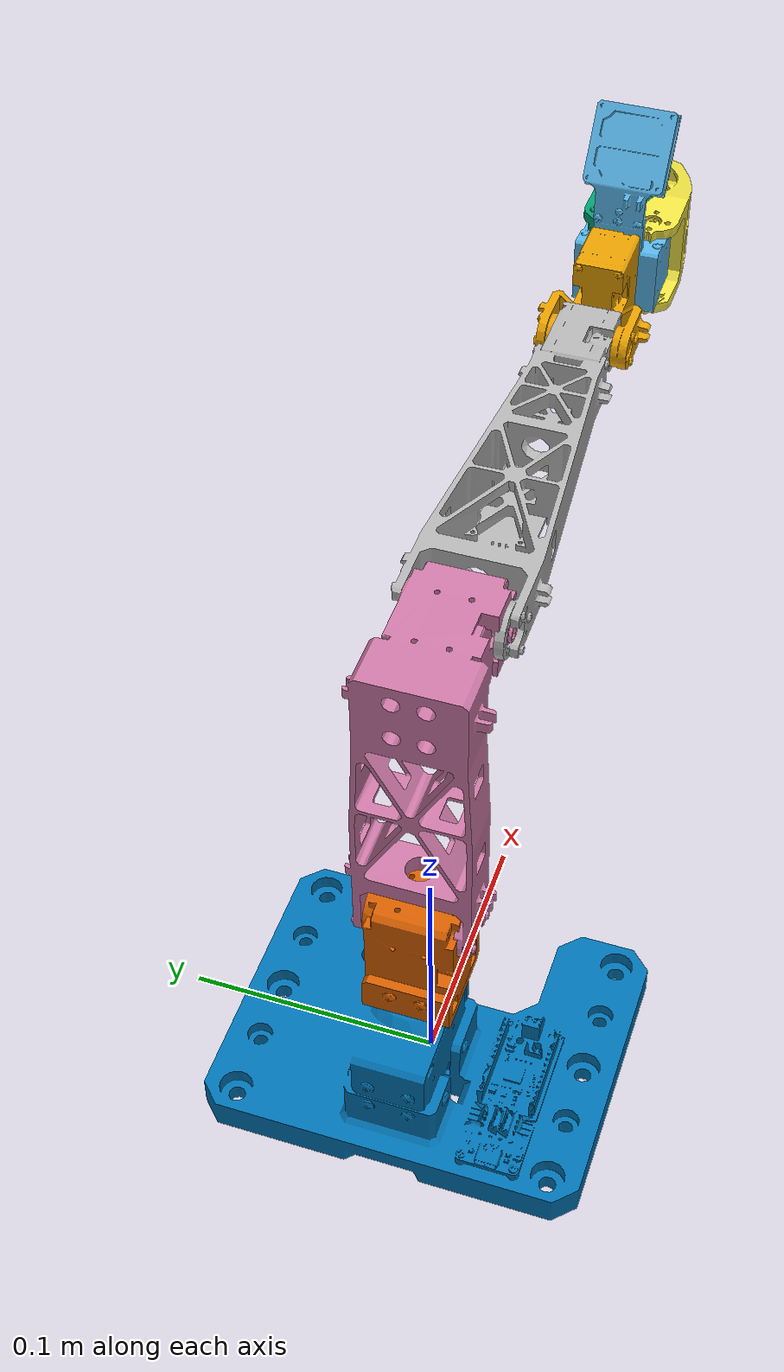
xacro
<?xml version="1.0"?>
<robot name="omx_f" xmlns:xacro="http://www.ros.org/wiki/xacro">
  <xacro:arg name="prefix" default="" />
  <xacro:arg name="use_sim" default="false" />
  <xacro:arg name="use_mock_hardware" default="false" />
  <xacro:arg name="mock_sensor_commands" default="false" />
  <xacro:arg name="config_type" default="omx_f" />
  <xacro:arg name="ros2_control_type" default="omx_f" />
  <xacro:arg name="port_name" default="/dev/ttyACM0" />
  <xacro:arg name="use_custom_hw" default="false" />

  <xacro:include filename="$(find open_manipulator_description)/gazebo/omx_f.gazebo.xacro" />
  <xacro:include filename="$(find open_manipulator_description)/urdf/omx_f/omx_f_arm.urdf.xacro" />
  <xacro:include filename="$(find omx_bringup)/config/omx_f/omx_f_grasp.ros2_control.xacro" />

  <link name="world" />

  <joint name="$(arg prefix)world_fixed" type="fixed">
    <parent link="world" />
    <child link="$(arg prefix)link0" />
    <origin xyz="0.0 0.0 0.0" rpy="0 0 0" />
  </joint>

  <joint name="$(arg prefix)end_effector_joint" type="fixed">
    <parent link="$(arg prefix)link5" />
    <child link="$(arg prefix)end_effector_link" />
    <origin xyz="0.09193 -0.0016 0" rpy="0 0 0" />
  </joint>

  <link name="$(arg prefix)end_effector_link">
    <visual>
      <origin xyz="0 0 0" rpy="0 0 0" />
      <geometry>
        <box size="0.01 0.01 0.01" />
      </geometry>
      <material name="red">
        <color rgba="1.0 0.0 0.0 1" />
      </material>
    </visual>
  </link>

  <!-- Camera frames previously published via static_transform_publisher. -->
  <link name="$(arg prefix)camera_mount" />
  <joint name="$(arg prefix)camera_mount_joint" type="fixed">
    <parent link="$(arg prefix)link5" />
    <child link="$(arg prefix)camera_mount" />
    <origin xyz="0.025 0.0 0.054" rpy="0.0 0.65 0.0" />
  </joint>

  <link name="$(arg prefix)default_cam" />
  <joint name="$(arg prefix)default_cam_joint" type="fixed">
    <parent link="$(arg prefix)camera_mount" />
    <child link="$(arg prefix)default_cam" />
    <origin xyz="0.0312 0.0 0.0" rpy="-1.5708 0.0 -1.5708" />
  </joint>

  <xacro:omx_f prefix="$(arg prefix)" />
  <xacro:omx_f_gazebo prefix="$(arg prefix)" />

  <xacro:omx_f_system
    name="OMXFSystem" prefix="$(arg prefix)" use_sim="$(arg use_sim)"
    use_mock_hardware="$(arg use_mock_hardware)"
    mock_sensor_commands="$(arg mock_sensor_commands)"
    port_name="$(arg port_name)"
    use_custom_hw="$(arg use_custom_hw)" />

  <gazebo>
    <plugin filename="gz_ros2_control-system" name="gz_ros2_control::GazeboSimROS2ControlPlugin">
      <parameters>$(find open_manipulator_bringup)/config/$(arg config_type)/hardware_controller_manager.yaml</parameters>
    </plugin>
  </gazebo>
</robot>

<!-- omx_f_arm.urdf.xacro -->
<robot xmlns:xacro="http://www.ros.org/wiki/xacro">
   <xacro:macro name="omx_f" params="prefix">
   <xacro:property name="meshes_file_direction" value="package://open_manipulator_description/meshes/omx_f" />
      <link name="${prefix}link0" >
         <visual name="${prefix}link0_visual">
            <origin xyz="0 0 0" rpy="0 0 0" />
            <geometry><mesh filename="${meshes_file_direction}/visual/dae/link0.dae" /></geometry>
         </visual>
         <collision name="${prefix}link0_collision">
            <origin xyz="0 0 0" rpy="0 0 0" />
            <geometry>
               <mesh filename="${meshes_file_direction}/follower_01_base.stl" scale="0.001 0.001 0.001" />
            </geometry>
            <material name="grey">
               <color rgba="0.2 0.2 0.2 1" />
            </material>
         </collision>
         <inertial>
            <origin xyz="-1.441250800e-02 -3.149887900e-03 1.927659900e-02" />
            <mass value="2.238905100e-01" />
            <inertia ixx="3.568046100e-04" ixy="-3.297178900e-06" ixz="1.907676700e-05"
            iyy="2.194193200e-04" iyz="1.407164200e-06"
            izz="4.557589900e-04" />
         </inertial>
      </link>
      <joint name="${prefix}joint1" type="revolute">
         <parent link="${prefix}link0" />
         <child link="${prefix}link1" />
         <origin xyz="-0.01125 0 0.034" rpy="0 0 0" />
         <axis xyz="0 0 1" />
         <limit velocity="4.8" effort="1000" lower="${-pi*2.0}" upper="${pi*2.0}" />
         <dynamics damping="0.05" />
      </joint>
      <link name="${prefix}link1" >
         <visual name="${prefix}link1_visual">
            <origin xyz="0 0 0" rpy="0 0 0" />
            <geometry><mesh filename="${meshes_file_direction}/visual/dae/link1.dae" /></geometry>
         </visual>
         <collision name="${prefix}link1_collision">
            <origin xyz="0 0 0" rpy="0 0 0" />
            <geometry>
               <mesh filename="${meshes_file_direction}/follower_02_base_tilt_Revised.stl" scale="0.001 0.001 0.001" />
            </geometry>
            <material name="grey">
               <color rgba="0.2 0.2 0.2 1" />
            </material>
         </collision>
         <inertial>
            <origin xyz="-6.223620500e-06 6.049232000e-04 4.741880300e-02" />
            <mass value="6.598704100e-02" />
            <inertia ixx="2.173166700e-05" ixy="-7.670221200e-09" ixz="6.604697700e-09"
            iyy="2.135151300e-05" iyz="-3.790671700e-07"
            izz="1.165795500e-05" />
         </inertial>
      </link>
      <joint name="${prefix}joint2" type="revolute">
         <parent link="${prefix}link1" />
         <child link="${prefix}link2" />
         <origin xyz="0 0 0.0635" rpy="0 0 0" />
         <axis xyz="0 1 0" />
         <limit velocity="4.8" effort="1000" lower="${-pi*2.0}" upper="${pi*2.0}" />
         <dynamics damping="0.1" />
      </joint>
      <link name="${prefix}link2" >
         <visual name="${prefix}link2_visual">
            <origin xyz="0 0 0" rpy="0 0 0" />
            <geometry><mesh filename="${meshes_file_direction}/visual/dae/link2.dae" /></geometry>
         </visual>
         <collision name="${prefix}link2_collision">
            <origin xyz="0 0 0" rpy="0 0 0" />
            <geometry>
               <mesh filename="${meshes_file_direction}/follower_03_middle_verticle.stl" scale="0.001 0.001 0.001" />
            </geometry>
            <material name="grey">
               <color rgba="0.2 0.2 0.2 1" />
            </material>
         </collision>
         <inertial>
            <origin xyz="1.808991600e-02 2.977875800e-04 9.900545200e-02" />
            <mass value="8.722147100e-02" />
            <inertia ixx="1.030791500e-04" ixy="-9.237869700e-07" ixz="-2.259657800e-05"
            iyy="1.208632700e-04" iyz="-1.937414500e-06"
            izz="4.199367700e-05" />
         </inertial>
      </link>
      <joint name="${prefix}joint3" type="revolute">
         <parent link="${prefix}link2" />
         <child link="${prefix}link3" />
          <origin xyz="0.0415 0 0.11315" rpy="0 0 0" />
         <axis xyz="0 1 0" />
         <limit velocity="4.8" effort="1000" lower="${-pi*2.0}" upper="${pi*2.0}" />
         <dynamics damping="0.1" />
      </joint>
      <link name="${prefix}link3" >
         <visual name="${prefix}link3_visual">
            <origin xyz="0 0 0" rpy="0 0 0" />
            <geometry><mesh filename="${meshes_file_direction}/visual/dae/link3.dae" /></geometry>
         </visual>
         <collision name="${prefix}link3_collision">
            <origin xyz="0 0 0" rpy="0 0 0" />
            <geometry>
               <mesh filename="${meshes_file_direction}/follower_04_middle_horizontal.stl" scale="0.001 0.001 0.001" />
            </geometry>
            <material name="grey">
               <color rgba="0.2 0.2 0.2 1" />
            </material>
         </collision>
         <inertial>
            <origin xyz="8.739860200e-02 4.131006500e-04 -3.582921000e-03" />
            <mass value="8.375912900e-02" />
            <inertia ixx="1.520310100e-05" ixy="-5.856958300e-07" ixz="-8.201398200e-06"
            iyy="2.260615800e-04" iyz="4.169928000e-07"
            izz="2.306688700e-04" />
         </inertial>
      </link>
      <joint name="${prefix}joint4" type="revolute">
         <parent link="${prefix}link3" />
         <child link="${prefix}link4" />
         <origin xyz="0.162 0 0" rpy="0 0 0" />
         <axis xyz="0 1 0" />
         <limit velocity="4.8" effort="1000" lower="${-pi*2.0}" upper="${pi*2.0}" />
         <dynamics damping="0.1" />
      </joint>
      <link name="${prefix}link4" >
         <visual name="${prefix}link4_visual">
            <origin xyz="0 0 0" rpy="0 0 0" />
            <geometry><mesh filename="${meshes_file_direction}/visual/dae/link4.dae" /></geometry>
         </visual>
         <collision name="${prefix}link4_collision">
            <origin xyz="0 0 0" rpy="0 0 0" />
            <geometry>
               <mesh filename="${meshes_file_direction}/follower_05_tip.stl" scale="0.001 0.001 0.001" />
            </geometry>
            <material name="grey">
               <color rgba="0.2 0.2 0.2 1" />
            </material>
         </collision>
         <inertial>
            <origin xyz="2.323498000e-02 6.773537800e-05 5.976131200e-03" />
            <mass value="2.997506300e-02" />
            <inertia ixx="5.099513000e-06" ixy="2.633166800e-08" ixz="-7.760319700e-07"
            iyy="7.099047100e-06" iyz="1.637967900e-09"
            izz="6.311949500e-06" />
         </inertial>
      </link>
      <joint name="${prefix}joint5" type="revolute">
         <parent link="${prefix}link4" />
         <child link="${prefix}link5" />
         <origin xyz="0.0287 0 0" rpy="0 0 0" />
         <axis xyz="1 0 0" />
         <limit velocity="4.8" effort="1000" lower="${-pi*2.0}" upper="${pi*2.0}" />
         <dynamics damping="0.1" />
      </joint>
      <link name="${prefix}link5" >
         <visual name="${prefix}link5_visual">
            <origin xyz="0 0 0" rpy="0 0 0" />
            <geometry><mesh filename="${meshes_file_direction}/visual/dae/link5.dae" /></geometry>
         </visual>
         <collision name="${prefix}link5_collision">
            <origin xyz="0 0 0" rpy="0 0 0" />
            <geometry>
               <mesh filename="${meshes_file_direction}/follower_06_pan_Revised.stl" scale="0.001 0.001 0.001" />
            </geometry>
            <material name="grey">
               <color rgba="0.2 0.2 0.2 1" />
            </material>
         </collision>
         <inertial>
            <origin xyz="2.807240700e-02 2.413594100e-05 1.352891400e-02" />
            <mass value="4.381088700e-02" />
            <inertia ixx="2.369445900e-05" ixy="-2.614252600e-08" ixz="-2.939284100e-06"
            iyy="2.323692400e-05" iyz="7.543040500e-08"
            izz="7.180629100e-06" />
         </inertial>
      </link>
      <joint name="${prefix}gripper_joint_1" type="revolute">
         <parent link="${prefix}link5" />
         <child link="${prefix}link6" />
         <origin xyz="0.0295 0.0075 0" rpy="0 0 0" />
         <axis xyz="0 0 1" />
         <limit velocity="4.8" effort="1000" lower="${-pi*2.0}" upper="${pi*2.0}" />
         <dynamics damping="0.1" />
      </joint>
      <link name="${prefix}link6" >
         <visual name="${prefix}link6_visual">
            <origin xyz="0 0 0" rpy="0 0 0" />
            <geometry><mesh filename="${meshes_file_direction}/visual/dae/link6.dae" /></geometry>
         </visual>
         <collision name="${prefix}link6_collision">
            <origin xyz="0 0 0" rpy="0 0 0" />
            <geometry>
               <mesh filename="${meshes_file_direction}/follower_07_gripper_motorized.stl" scale="0.001 0.001 0.001" />
            </geometry>
            <material name="grey">
               <color rgba="0.2 0.2 0.2 1" />
            </material>
         </collision>
         <inertial>
            <origin xyz="1.616456500e-02 1.273103200e-03 2.729159800e-04" />
            <mass value="1.209067700e-02" />
            <inertia ixx="2.708328700e-06" ixy="1.397245300e-07" ixz="5.888794300e-08"
            iyy="6.873372800e-06" iyz="1.537070800e-08"
            izz="4.694188100e-06" />
         </inertial>
      </link>
      <joint name="${prefix}gripper_joint_2" type="revolute">
         <parent link="${prefix}link5" />
         <child link="${prefix}link7" />
         <origin xyz="0.0295 -0.0108 0" rpy="0 0 0" />
         <axis xyz="0 0 1" />
         <limit velocity="4.8" effort="1000" lower="${-pi*2.0}" upper="${pi*2.0}" />
         <dynamics damping="0.1" />
         <mimic joint="${prefix}gripper_joint_1" multiplier="-1"/>
      </joint>
      <link name="${prefix}link7" >
         <visual name="${prefix}link7_visual">
            <origin xyz="0 0 0" rpy="0 0 0" />
            <geometry><mesh filename="${meshes_file_direction}/visual/dae/link7.dae" /></geometry>
         </visual>
         <collision name="${prefix}link7_collision">
            <origin xyz="0 0 0" rpy="0 0 0" />
            <geometry>
               <mesh filename="${meshes_file_direction}/follower_08_gripper_gear.stl" scale="0.001 0.001 0.001" />
            </geometry>
            <material name="grey">
               <color rgba="0.2 0.2 0.2 1" />
            </material>
         </collision>
         <inertial>
            <origin xyz="1.616456500e-02 1.273103200e-03 2.729159800e-04" />
            <mass value="1.209067700e-02" />
            <inertia ixx="2.708328700e-06" ixy="1.397245300e-07" ixz="5.888794300e-08"
            iyy="6.873372800e-06" iyz="1.537070800e-08"
            izz="4.694188100e-06" />
         </inertial>
      </link>
   </xacro:macro>
</robot>
